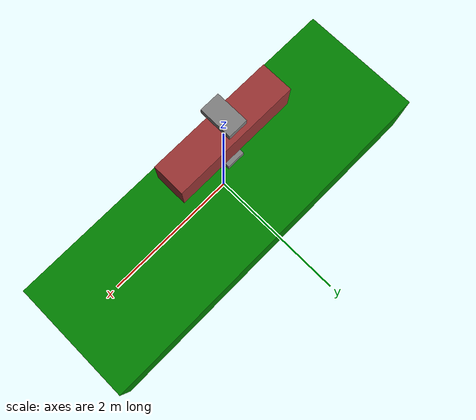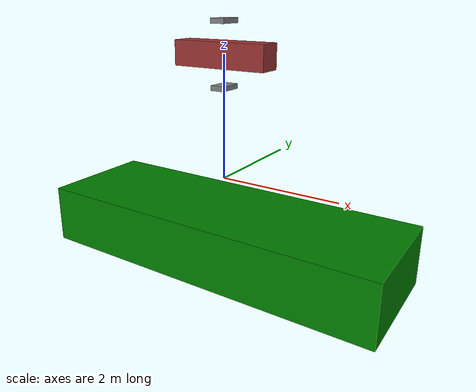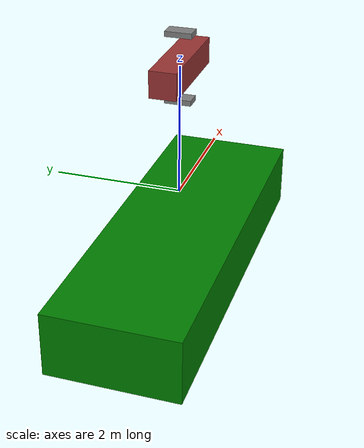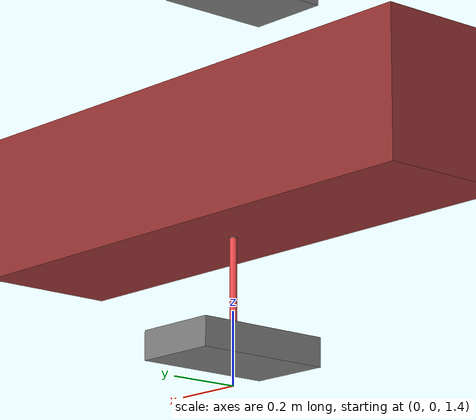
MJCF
<mujoco model="OneDHopper">
    <compiler angle="radian" inertiafromgeom="true" />
    <size njmax="500" nconmax="100" />

    <default>
		<site type="sphere" size="0.01"/>
	</default>

    <worldbody>
        <light directional="true" cutoff="4" exponent="20" diffuse="1 1 1" specular="0 0 0" pos=".9 .3 2.5" dir="-.9 -.3 -2.5 "/>
        <geom name="ground" size="3 1 0.5" pos="0 0 -1" type="box" rgba="0 0.5 0 1" />
        <body name="leg" pos="0 0 2.0">
            <freejoint/>
            <site name="legBottom" pos="0 0 -0.5"/>
            <geom size=".12 .2 .04" pos="0 0 0.5" type="box" />
            <geom size=".12 .2 .04" pos="0 0 -0.5" type="box" />

            <body name="body" pos="0 0 0.0 ">
                <joint name="slide1" pos="0 0 1" axis="0 0 1" type="slide" stiffness="10000.0" springref="1.0"/>
                <geom size=".8 .2 .2" type="box" rgba="0.6 0.2 0.2 1" />
                <site name="bodyBottom" pos="0 0 -0.2"/>
            </body>
        </body>

    </worldbody>

    <tendon>
		<spatial name="lThread" width="0.01" rgba=".95 .3 .3 1" limited="true" range="0 0.55" >
            <site site="legBottom"/>
			<site site="bodyBottom"/>
		</spatial>
	</tendon>

	<actuator>
        <motor joint='slide1' name='Actuator1' gear="5000" />
	</actuator>

	<sensor>
		<jointpos name="Sensor1" joint="slide1" noise="0.001"/>
	</sensor>

</mujoco>
